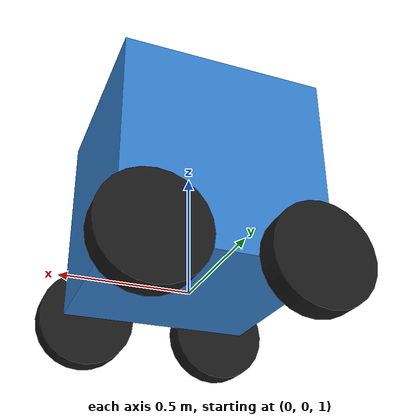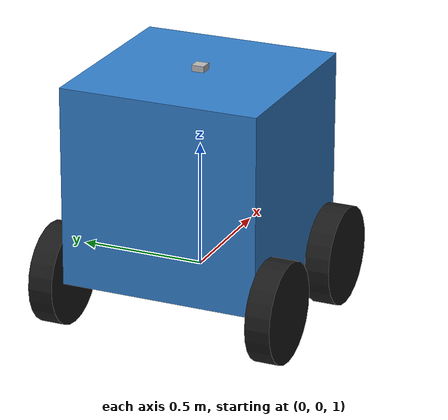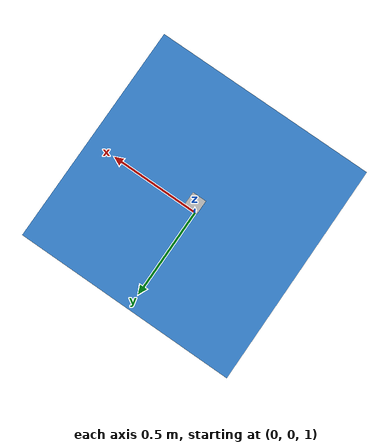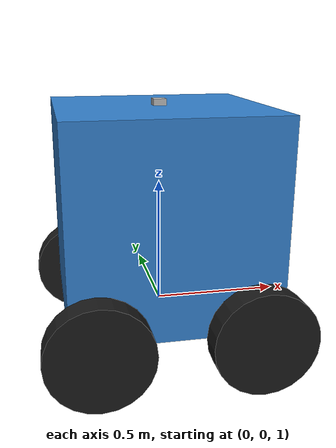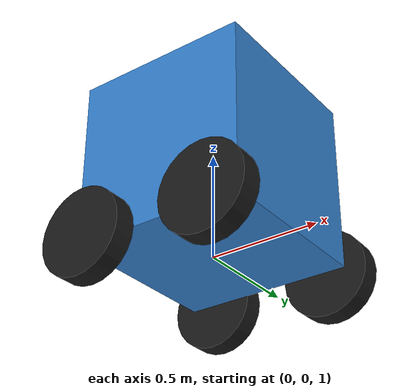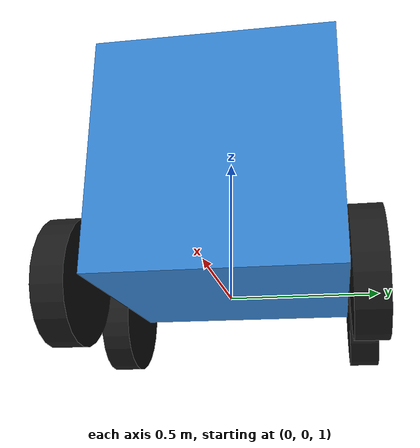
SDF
<?xml version="1.0"?>
<sdf version="1.8">
  <model name="simple_car">
    <self_collide>true</self_collide>
    <pose>0 0 1.4 0 0 0</pose>

    <link name="chassis">
      <self_collide>true</self_collide>
      <inertial>
        <mass>20</mass>
        <inertia>
          <ixx>2.0</ixx><ixy>0</ixy><ixz>0</ixz>
          <iyy>2.0</iyy><iyz>0</iyz>
          <izz>2.0</izz>
        </inertia>
      </inertial>
      <visual name="chassis_visual">
        <geometry>
          <box><size>0.8 0.8 0.8</size></box>
        </geometry>
        <material>
          <ambient>0.2 0.5 0.8 1</ambient>
          <diffuse>0.2 0.5 0.8 1</diffuse>
        </material>
      </visual>
      <collision name="chassis_collision">
        <geometry>
          <box><size>0.8 0.8 0.8</size></box>
        </geometry>
      </collision>
    </link>

  <link name="arm_mount_link">
  <!-- Place exactly on top of chassis -->
    <pose>0 0 0.4 0 0 0</pose>

    <inertial>
      <mass>0.1</mass>
      <inertia>
        <ixx>0.001</ixx><ixy>0</ixy><ixz>0</ixz>
        <iyy>0.001</iyy><iyz>0</iyz>
        <izz>0.001</izz>
      </inertia>
    </inertial>

    <!-- Optional visual for debugging -->
    <visual name="chassis_visual">
      <geometry>
        <box><size>0.05 0.05 0.05</size></box>
      </geometry>
    </visual>
  </link>

<joint name="arm_mount_joint" type="fixed">
  <parent>chassis</parent>
  <child>arm_mount_link</child>
</joint>

    <link name="front_left_wheel">
      <pose>0.3 0.45 -0.4 1.5707 0 0</pose>
      <inertial>
        <mass>1</mass>
        <inertia>
          <ixx>0.02</ixx><ixy>0</ixy><ixz>0</ixz>
          <iyy>0.02</iyy><iyz>0</iyz>
          <izz>0.04</izz>
        </inertia>
      </inertial>
      <visual name="wheel_visual">
        <geometry>
          <cylinder><radius>0.2</radius><length>0.1</length></cylinder>
        </geometry>
        <material>
          <ambient>0.1 0.1 0.1 1</ambient>
          <diffuse>0.1 0.1 0.1 1</diffuse>
        </material>
      </visual>
      <collision name="wheel_collision">
        <geometry>
          <cylinder><radius>0.2</radius><length>0.1</length></cylinder>
        </geometry>
        <surface>
          <friction>
            <ode>
              <mu>100</mu>
              <mu2>100</mu2>
              <slip1>0.0</slip1>
              <slip2>0.0</slip2>
            </ode>
          </friction>
        </surface>
      </collision>
    </link>

    <link name="front_right_wheel">
      <pose>0.3 -0.45 -0.4 1.5707 0 0</pose>
      <inertial>
        <mass>1</mass>
        <inertia>
          <ixx>0.02</ixx><ixy>0</ixy><ixz>0</ixz>
          <iyy>0.02</iyy><iyz>0</iyz>
          <izz>0.04</izz>
        </inertia>
      </inertial>
      <visual name="wheel_visual">
        <geometry>
          <cylinder><radius>0.2</radius><length>0.1</length></cylinder>
        </geometry>
        <material>
          <ambient>0.1 0.1 0.1 1</ambient>
          <diffuse>0.1 0.1 0.1 1</diffuse>
        </material>
      </visual>
      <collision name="wheel_collision">
        <geometry>
          <cylinder><radius>0.2</radius><length>0.1</length></cylinder>
        </geometry>
        <surface>
          <friction>
            <ode>
              <mu>100</mu>
              <mu2>100</mu2>
              <slip1>0.0</slip1>
              <slip2>0.0</slip2>
            </ode>
          </friction>
        </surface>
      </collision>
    </link>

    <link name="rear_left_wheel">
      <pose>-0.3 0.45 -0.4 1.5707 0 0</pose>
      <inertial>
        <mass>1</mass>
        <inertia>
          <ixx>0.02</ixx><ixy>0</ixy><ixz>0</ixz>
          <iyy>0.02</iyy><iyz>0</iyz>
          <izz>0.04</izz>
        </inertia>
      </inertial>
      <visual name="wheel_visual">
        <geometry>
          <cylinder><radius>0.2</radius><length>0.1</length></cylinder>
        </geometry>
        <material>
          <ambient>0.1 0.1 0.1 1</ambient>
          <diffuse>0.1 0.1 0.1 1</diffuse>
        </material>
      </visual>
      <collision name="wheel_collision">
        <geometry>
          <cylinder><radius>0.2</radius><length>0.1</length></cylinder>
        </geometry>
        <surface>
          <friction>
            <ode>
              <mu>100</mu>
              <mu2>100</mu2>
              <slip1>0.0</slip1>
              <slip2>0.0</slip2>
            </ode>
          </friction>
        </surface>
      </collision>
    </link>

    <link name="rear_right_wheel">
      <pose>-0.3 -0.45 -0.4 1.5707 0 0</pose>
      <inertial>
        <mass>1</mass>
        <inertia>
          <ixx>0.02</ixx><ixy>0</ixy><ixz>0</ixz>
          <iyy>0.02</iyy><iyz>0</iyz>
          <izz>0.04</izz>
        </inertia>
      </inertial>
      <visual name="wheel_visual">
        <geometry>
          <cylinder><radius>0.2</radius><length>0.1</length></cylinder>
        </geometry>
        <material>
          <ambient>0.1 0.1 0.1 1</ambient>
          <diffuse>0.1 0.1 0.1 1</diffuse>
        </material>
      </visual>
      <collision name="wheel_collision">
        <geometry>
          <cylinder><radius>0.2</radius><length>0.1</length></cylinder>
        </geometry>
        <surface>
          <friction>
            <ode>
              <mu>100</mu>
              <mu2>100</mu2>
              <slip1>0.0</slip1>
              <slip2>0.0</slip2>
            </ode>
          </friction>
        </surface>
      </collision>
    </link>

    <joint name="front_left_wheel_joint" type="revolute">
      <parent>chassis</parent>
      <child>front_left_wheel</child>
      <axis>
        <xyz>0 0 1</xyz>
        <limit>
          <lower>-1e16</lower>
          <upper>1e16</upper>
        </limit>
      </axis>
    </joint>

    <joint name="front_right_wheel_joint" type="revolute">
      <parent>chassis</parent>
      <child>front_right_wheel</child>
      <axis>
        <xyz>0 0 1</xyz>
        <limit>
          <lower>-1e16</lower>
          <upper>1e16</upper>
        </limit>
      </axis>
    </joint>

    <joint name="rear_left_wheel_joint" type="revolute">
      <parent>chassis</parent>
      <child>rear_left_wheel</child>
      <axis>
        <xyz>0 0 1</xyz>
        <limit>
          <lower>-1e16</lower>
          <upper>1e16</upper>
        </limit>
      </axis>
    </joint>

    <joint name="rear_right_wheel_joint" type="revolute">
      <parent>chassis</parent>
      <child>rear_right_wheel</child>
      <axis>
        <xyz>0 0 1</xyz>
        <limit>
          <lower>-1e16</lower>
          <upper>1e16</upper>
        </limit>
      </axis>
    </joint>

    <plugin filename="ignition-gazebo-diff-drive-system" name="ignition::gazebo::systems::DiffDrive">
      <left_joint>front_left_wheel_joint</left_joint>
      <left_joint>rear_left_wheel_joint</left_joint>
      <right_joint>front_right_wheel_joint</right_joint>
      <right_joint>rear_right_wheel_joint</right_joint>
      <wheel_separation>0.9</wheel_separation>
      <wheel_radius>0.2</wheel_radius>
      <max_linear_acceleration>1</max_linear_acceleration>
      <min_linear_acceleration>-1</min_linear_acceleration>
      <max_angular_acceleration>2</max_angular_acceleration>
      <min_angular_acceleration>-2</min_angular_acceleration>
      <topic>/model/simple_car/cmd_vel</topic>
    </plugin>

    <plugin filename="ignition-gazebo-joint-state-publisher-system" name="ignition::gazebo::systems::JointStatePublisher"/>

  </model>
</sdf>
